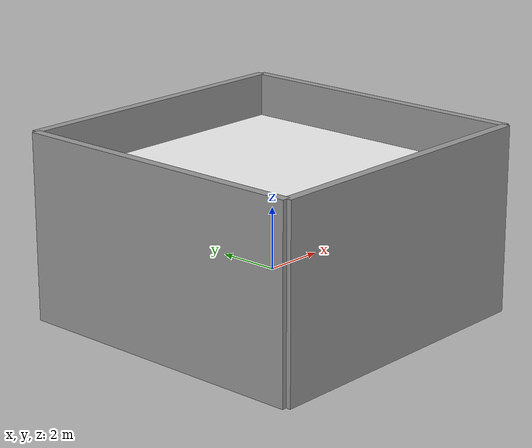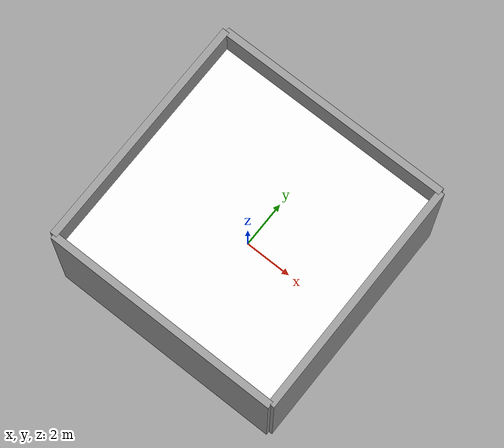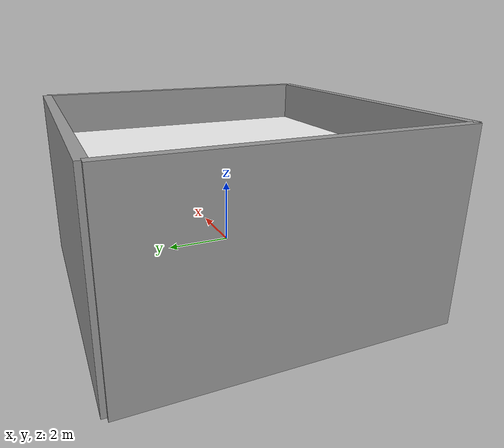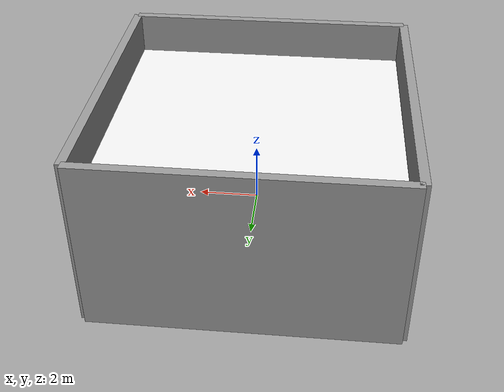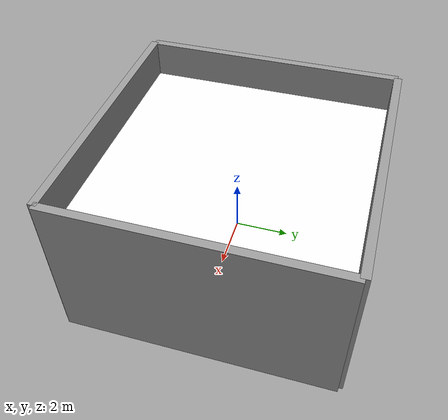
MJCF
<mujoco model="test_room">
  <visual>
    <headlight diffuse="0.6 0.6 0.6" ambient="0.3 0.3 0.3" specular="0 0 0"/>
    <rgba haze="0.15 0.25 0.35 1"/>
    <global azimuth="-120" elevation="-20"/>
  </visual>

  <asset>
    <!-- Wood floor texture -->
    <texture name="wood_floor" type="2d" file="../common/textures/wood_floor.png"/>

    <!-- White/light wall texture -->
    <texture name="white_wall" type="2d" file="../common/textures/gray_wall_real.png"/>

    <!-- Materials -->
    <material name="floor_material" texture="wood_floor"
              texrepeat="8 8"
              specular="0.3"
              shininess="0.2"
              reflectance="0.1"/>

    <material name="wall_material" texture="white_wall"
              texrepeat="4 4"
              specular="0.05"
              shininess="0.01"
              reflectance="0.02"/>
  </asset>

  <worldbody>
    <!-- Wood floor -->
    <geom name="floor" type="plane"
          size="5 5 0.1"
          pos="0 0 0"
          material="floor_material"
          friction="1.0 0.05 0.01"/>

    <!-- Four walls with white/light texture -->
    <!-- North wall -->
    <geom name="wall_north" type="box"
          size="5 0.15 3"
          pos="0 5 1.5"
          material="wall_material"/>

    <!-- South wall -->
    <geom name="wall_south" type="box"
          size="5 0.15 3"
          pos="0 -5 1.5"
          material="wall_material"/>

    <!-- East wall -->
    <geom name="wall_east" type="box"
          size="0.15 5 3"
          pos="5 0 1.5"
          material="wall_material"/>

    <!-- West wall -->
    <geom name="wall_west" type="box"
          size="0.15 5 3"
          pos="-5 0 1.5"
          material="wall_material"/>

    <!-- Simple ceiling -->
    <geom name="ceiling" type="box"
          size="5 5 0.1"
          pos="0 0 3"
          rgba="0.95 0.95 0.95 1"/>
  </worldbody>
</mujoco>
